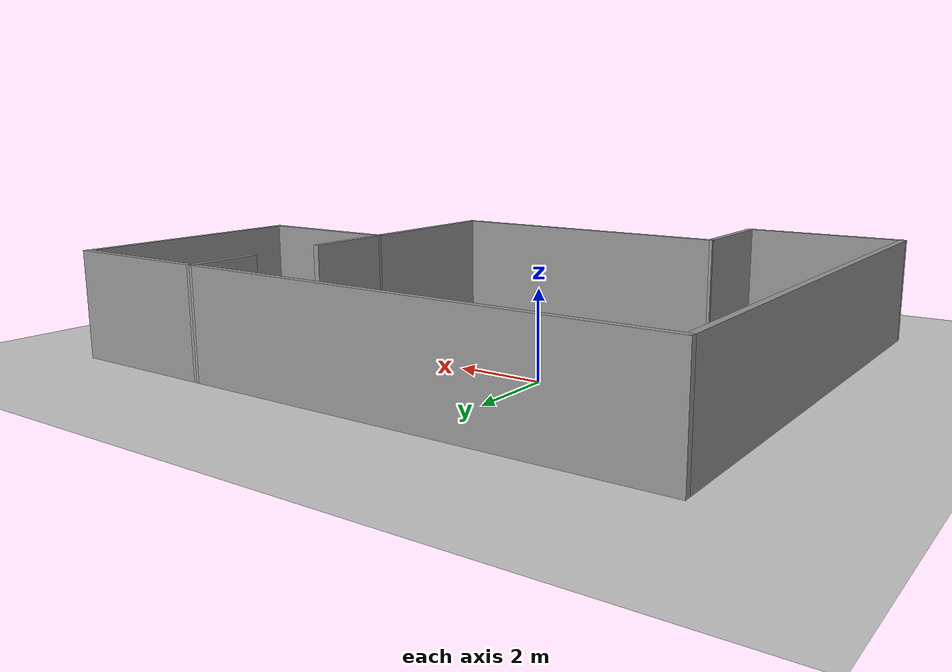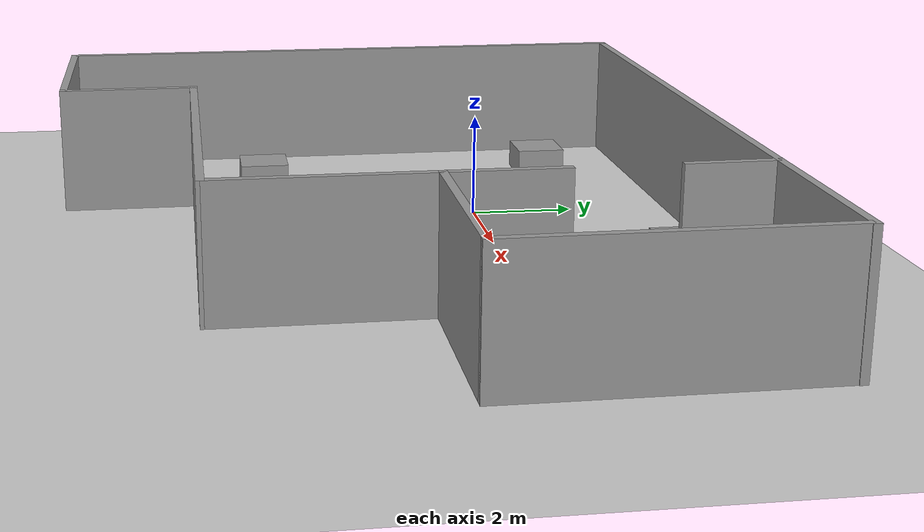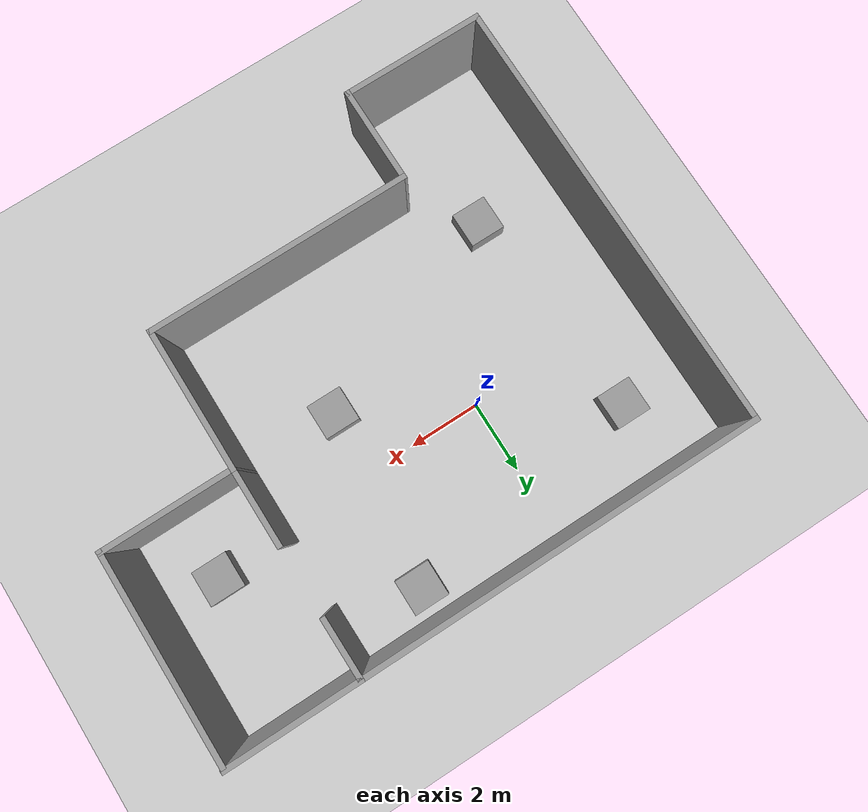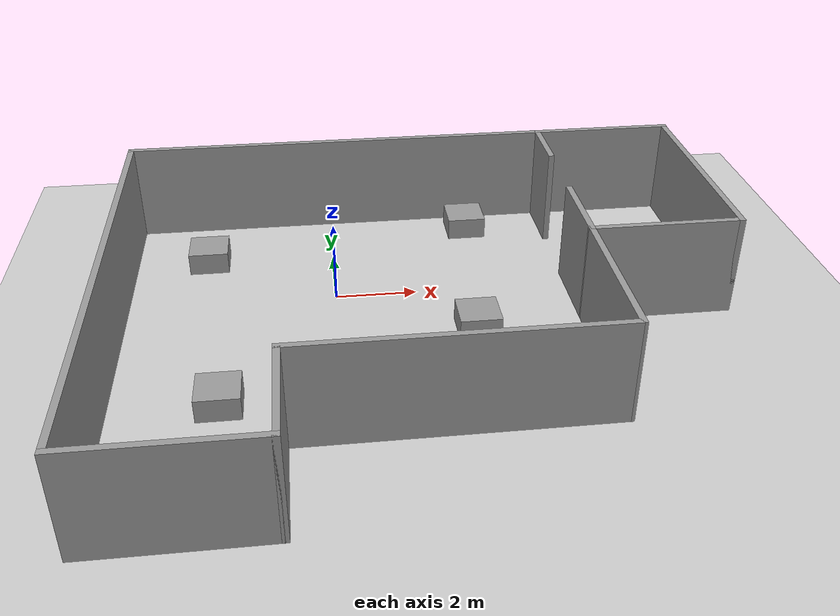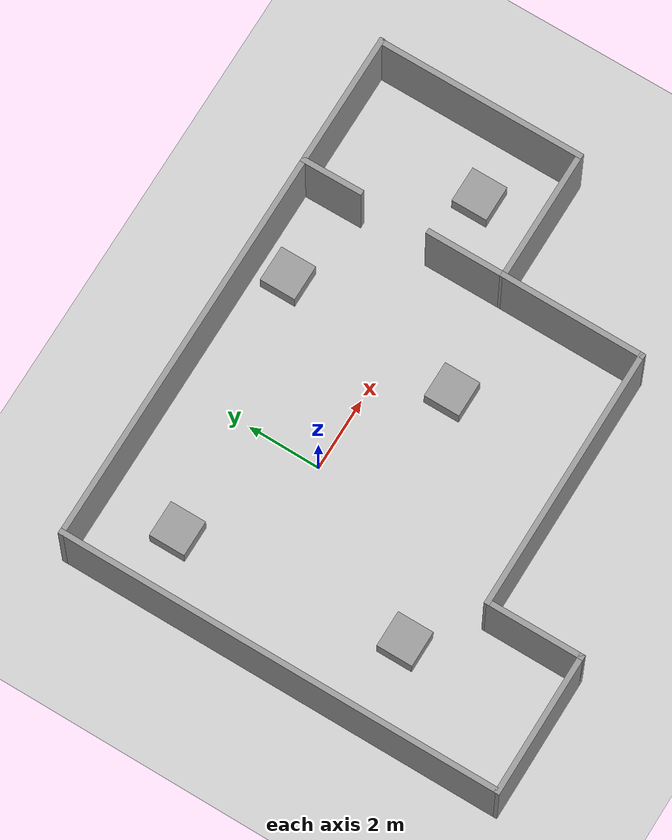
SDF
<sdf version="1.7">
 <world name="default">
  <light name="sun" type="directional">
   <pose>0 0 10 0 -0 0</pose>
   <diffuse>0.8 0.8 0.8 1</diffuse>
   <specular>0.2 0.2 0.2 1</specular>
   <attenuation>
    <range>1000</range>
    <constant>0.9</constant>
    <linear>0.01</linear>
    <quadratic>0.001</quadratic>
   </attenuation>
   <direction>-0.5 0.1 -0.9</direction>
   <spot><inner_angle>0</inner_angle><outer_angle>0</outer_angle><falloff>0</falloff></spot>
  </light>
  <model name="ground_plane">
   <static>1</static>
   <link name="link">
    <collision name="collision">
     <geometry><plane><normal>0 0 1</normal><size>100 100</size></plane></geometry>
     <surface>
      <contact><collide_bitmask>65535</collide_bitmask></contact>
      <friction><ode><mu>100</mu><mu2>50</mu2></ode></friction>
     </surface>
    </collision>
    <visual name="visual">
     <cast_shadows>0</cast_shadows>
     <geometry><plane><normal>0 0 1</normal><size>100 100</size></plane></geometry>
     <material>
      <script><uri>file://media/materials/scripts/gazebo.material</uri><name>Gazebo/Grey</name></script>
     </material>
    </visual>
   </link>
  </model>
  <gravity>0 0 -9.8</gravity>
  <magnetic_field>6e-06 2.3e-05 -4.2e-05</magnetic_field>
  <atmosphere type="adiabatic"/>
  <physics type="ode">
   <max_step_size>0.001</max_step_size>
   <real_time_factor>1</real_time_factor>
   <real_time_update_rate>1000</real_time_update_rate>
  </physics>
  <scene><ambient>0.4 0.4 0.4 1</ambient><background>0.7 0.7 0.7 1</background><shadows>1</shadows></scene>
  <spherical_coordinates>
   <surface_model>EARTH_WGS84</surface_model>
   <latitude_deg>0</latitude_deg>
   <longitude_deg>0</longitude_deg>
   <elevation>0</elevation>
   <heading_deg>0</heading_deg>
  </spherical_coordinates>
  <model name="ArucoHouse">
   <pose>2.16426 -2.07768 0 0 -0 0</pose>
   <link name="Wall_14">
    <collision name="Wall_14_Collision">
     <geometry><box><size>4 0.15 2.5</size></box></geometry>
     <pose>0 0 1.25 0 -0 0</pose>
    </collision>
    <visual name="Wall_14_Visual">
     <pose>0 0 1.25 0 -0 0</pose>
     <geometry><box><size>4 0.15 2.5</size></box></geometry>
     <material>
      <script><uri>file://media/materials/scripts/gazebo.material</uri><name>Gazebo/Grey</name></script>
      <ambient>1 1 1 1</ambient>
     </material>
     <meta><layer>0</layer></meta>
    </visual>
    <pose>-5.425 -6.10361 0 0 -0 0</pose>
   </link>
   <link name="Wall_15">
    <collision name="Wall_15_Collision">
     <geometry><box><size>2.75 0.15 2.5</size></box></geometry>
     <pose>0 0 1.25 0 -0 0</pose>
    </collision>
    <visual name="Wall_15_Visual">
     <pose>0 0 1.25 0 -0 0</pose>
     <geometry><box><size>2.75 0.15 2.5</size></box></geometry>
     <material>
      <script><uri>file://media/materials/scripts/gazebo.material</uri><name>Gazebo/Grey</name></script>
      <ambient>1 1 1 1</ambient>
     </material>
     <meta><layer>0</layer></meta>
    </visual>
    <pose>-3.5 -4.80361 0 0 -0 1.5708</pose>
   </link>
   <link name="Wall_2">
    <collision name="Wall_2_Collision">
     <geometry><box><size>12.25 0.15 2.5</size></box></geometry>
     <pose>0 0 1.25 0 -0 0</pose>
    </collision>
    <visual name="Wall_2_Visual">
     <pose>0 0 1.25 0 -0 0</pose>
     <geometry><box><size>12.25 0.15 2.5</size></box></geometry>
     <material>
      <script><uri>file://media/materials/scripts/gazebo.material</uri><name>Gazebo/Grey</name></script>
      <ambient>1 1 1 1</ambient>
     </material>
     <meta><layer>0</layer></meta>
    </visual>
    <pose>-7.35 0.052955 0 0 -0 -1.5708</pose>
   </link>
   <link name="Wall_21">
    <collision name="Wall_21_Collision">
     <geometry><box><size>7.36941 0.15 2.5</size></box></geometry>
     <pose>0 0 1.25 0 -0 0</pose>
    </collision>
    <visual name="Wall_21_Visual">
     <pose>0 0 1.25 0 -0 0</pose>
     <geometry><box><size>7.36941 0.15 2.5</size></box></geometry>
     <material>
      <script><uri>file://media/materials/scripts/gazebo.material</uri><name>Gazebo/Grey</name></script>
      <ambient>1 1 1 1</ambient>
     </material>
     <meta><layer>0</layer></meta>
    </visual>
    <pose>0.109705 -3.50033 0 0 -0 0.000909</pose>
   </link>
   <link name="Wall_23">
    <collision name="Wall_23_Collision">
     <geometry><box><size>3.75 0.15 2.5</size></box></geometry>
     <pose>0 0 1.25 0 -0 0</pose>
    </collision>
    <visual name="Wall_23_Visual">
     <pose>0 0 1.25 0 -0 0</pose>
     <geometry><box><size>3.75 0.15 2.5</size></box></geometry>
     <material>
      <script><uri>file://media/materials/scripts/gazebo.material</uri><name>Gazebo/Grey</name></script>
      <ambient>1 1 1 1</ambient>
     </material>
     <meta><layer>0</layer></meta>
    </visual>
    <pose>5.53338 0.41123 0 0 -0 0</pose>
   </link>
   <link name="Wall_24">
    <collision name="Wall_24_Collision">
     <geometry><box><size>5.75 0.15 2.5</size></box></geometry>
     <pose>0 0 1.25 0 -0 0</pose>
    </collision>
    <visual name="Wall_24_Visual">
     <pose>0 0 1.25 0 -0 0</pose>
     <geometry><box><size>5.75 0.15 2.5</size></box></geometry>
     <material>
      <script><uri>file://media/materials/scripts/gazebo.material</uri><name>Gazebo/Grey</name></script>
      <ambient>1 1 1 1</ambient>
     </material>
     <meta><layer>0</layer></meta>
    </visual>
    <pose>7.33338 3.21123 0 0 -0 1.5708</pose>
   </link>
   <link name="Wall_26">
    <collision name="Wall_26_Collision">
     <geometry><box><size>3.78059 0.15 2.5</size></box></geometry>
     <pose>0 0 1.25 0 -0 0</pose>
    </collision>
    <visual name="Wall_26_Visual">
     <pose>0 0 1.25 0 -0 0</pose>
     <geometry><box><size>3.78059 0.15 2.5</size></box></geometry>
     <material>
      <script><uri>file://media/materials/scripts/gazebo.material</uri><name>Gazebo/Grey</name></script>
      <ambient>1 1 1 1</ambient>
     </material>
     <meta><layer>0</layer></meta>
    </visual>
    <pose>5.5347 6.10295 0 0 -0 0</pose>
   </link>
   <link name="Wall_28">
    <collision name="Wall_28_Collision">
     <geometry><box><size>4.0583 0.15 2.5</size></box></geometry>
     <pose>0 0 1.25 0 -0 0</pose>
    </collision>
    <visual name="Wall_28_Visual">
     <pose>0 0 1.25 0 -0 0</pose>
     <geometry><box><size>4.0583 0.15 2.5</size></box></geometry>
     <material>
      <script><uri>file://media/materials/scripts/gazebo.material</uri><name>Gazebo/Grey</name></script>
      <ambient>1 1 1 1</ambient>
     </material>
     <meta><layer>0</layer></meta>
    </visual>
    <pose>3.7264 -1.54291 0 0 -0 1.56722</pose>
   </link>
   <link name="Wall_30">
    <collision name="Wall_30_Collision">
     <geometry><box><size>2.25 0.15 2.5</size></box></geometry>
     <pose>0 0 1.25 0 -0 0</pose>
    </collision>
    <visual name="Wall_30_Visual">
     <pose>0 0 1.25 0 -0 0</pose>
     <geometry><box><size>2.25 0.15 2.5</size></box></geometry>
     <material>
      <script><uri>file://media/materials/scripts/gazebo.material</uri><name>Gazebo/Grey</name></script>
      <ambient>1 1 1 1</ambient>
     </material>
     <meta><layer>0</layer></meta>
    </visual>
    <pose>3.73338 1.46123 0 0 -0 1.5708</pose>
   </link>
   <link name="Wall_33">
    <collision name="Wall_33_Collision">
     <geometry><box><size>1.7427 0.15 2.5</size></box></geometry>
     <pose>0 0 1.25 0 -0 0</pose>
    </collision>
    <visual name="Wall_33_Visual">
     <pose>0 0 1.25 0 -0 0</pose>
     <geometry><box><size>1.7427 0.15 2.5</size></box></geometry>
     <material>
      <script><uri>file://media/materials/scripts/gazebo.material</uri><name>Gazebo/Grey</name></script>
      <ambient>1 1 1 1</ambient>
     </material>
     <meta><layer>0</layer></meta>
    </visual>
    <pose>3.7264 5.30664 0 0 -0 1.57957</pose>
   </link>
   <link name="Wall_5">
    <collision name="Wall_5_Collision">
     <geometry><box><size>11.2194 0.15 2.5</size></box></geometry>
     <pose>0 0 1.25 0 -0 0</pose>
    </collision>
    <visual name="Wall_5_Visual">
     <pose>0 0 1.25 0 -0 0</pose>
     <geometry><box><size>11.2194 0.15 2.5</size></box></geometry>
     <material>
      <script><uri>file://media/materials/scripts/gazebo.material</uri><name>Gazebo/Grey</name></script>
      <ambient>1 1 1 1</ambient>
     </material>
     <meta><layer>0</layer></meta>
    </visual>
    <pose>-1.8153 6.10295 0 0 -0 3.14159</pose>
   </link>
   <static>1</static>
  </model>
  <model name="unit_box">
   <pose>-3.23125 2.04718 0.278191 0 -0 0</pose>
   <link name="link">
    <inertial>
     <mass>1</mass>
     <inertia>
      <ixx>0.166667</ixx>
      <ixy>0</ixy>
      <ixz>0</ixz>
      <iyy>0.166667</iyy>
      <iyz>0</iyz>
      <izz>0.166667</izz>
     </inertia>
    </inertial>
    <collision name="collision"><geometry><box><size>1 1 0.556382</size></box></geometry></collision>
    <visual name="visual">
     <geometry><box><size>1 1 0.556382</size></box></geometry>
     <material>
      <script><name>Gazebo/Grey</name><uri>file://media/materials/scripts/gazebo.material</uri></script>
     </material>
    </visual>
   </link>
  </model>
  <model name="unit_box_clone">
   <pose>3.28439 -1.81515 0.278191 0 -0 0</pose>
   <link name="link">
    <inertial>
     <mass>1</mass>
     <inertia>
      <ixx>0.166667</ixx>
      <ixy>0</ixy>
      <ixz>0</ixz>
      <iyy>0.166667</iyy>
      <iyz>0</iyz>
      <izz>0.166667</izz>
     </inertia>
    </inertial>
    <collision name="collision"><geometry><box><size>1 1 0.556382</size></box></geometry></collision>
    <visual name="visual">
     <geometry><box><size>1 1 0.556382</size></box></geometry>
     <material>
      <script><name>Gazebo/Grey</name><uri>file://media/materials/scripts/gazebo.material</uri></script>
     </material>
    </visual>
   </link>
  </model>
  <model name="unit_box_clone_0">
   <pose>-2.71259 -4.11536 0.278191 0 -0 0</pose>
   <link name="link">
    <inertial>
     <mass>1</mass>
     <inertia>
      <ixx>0.166667</ixx>
      <ixy>0</ixy>
      <ixz>0</ixz>
      <iyy>0.166667</iyy>
      <iyz>0</iyz>
      <izz>0.166667</izz>
     </inertia>
    </inertial>
    <collision name="collision"><geometry><box><size>1 1 0.556382</size></box></geometry></collision>
    <visual name="visual">
     <geometry><box><size>1 1 0.556382</size></box></geometry>
     <material>
      <script><name>Gazebo/Grey</name><uri>file://media/materials/scripts/gazebo.material</uri></script>
     </material>
    </visual>
   </link>
  </model>
  <model name="unit_box_clone_1">
   <pose>7.95577 0.221077 0.278191 0 -0 0</pose>
   <link name="link">
    <inertial>
     <mass>1</mass>
     <inertia>
      <ixx>0.166667</ixx>
      <ixy>0</ixy>
      <ixz>0</ixz>
      <iyy>0.166667</iyy>
      <iyz>0</iyz>
      <izz>0.166667</izz>
     </inertia>
    </inertial>
    <collision name="collision"><geometry><box><size>1 1 0.556382</size></box></geometry></collision>
    <visual name="visual">
     <geometry><box><size>1 1 0.556382</size></box></geometry>
     <material>
      <script><name>Gazebo/Grey</name><uri>file://media/materials/scripts/gazebo.material</uri></script>
     </material>
    </visual>
   </link>
  </model>
  <model name="unit_box_clone_2">
   <pose>3.73103 3.17976 0.278191 0 -0 0</pose>
   <link name="link">
    <inertial>
     <mass>1</mass>
     <inertia>
      <ixx>0.166667</ixx>
      <ixy>0</ixy>
      <ixz>0</ixz>
      <iyy>0.166667</iyy>
      <iyz>0</iyz>
      <izz>0.166667</izz>
     </inertia>
    </inertial>
    <collision name="collision"><geometry><box><size>1 1 0.556382</size></box></geometry></collision>
    <visual name="visual">
     <geometry><box><size>1 1 0.556382</size></box></geometry>
     <material>
      <script><name>Gazebo/Grey</name><uri>file://media/materials/scripts/gazebo.material</uri></script>
     </material>
    </visual>
   </link>
  </model>
 </world>
</sdf>
